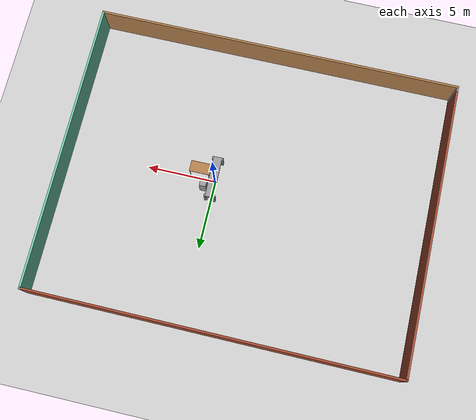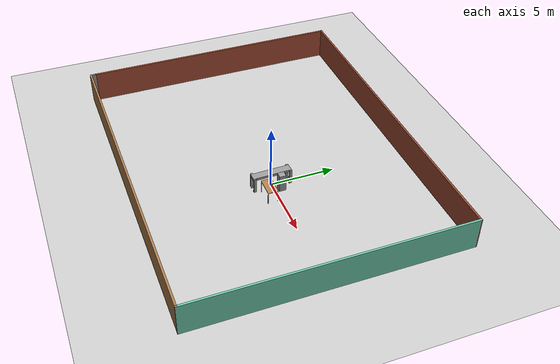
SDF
<sdf version="1.7">
 <world name="default">
  <model name="ground_plane">
   <static>1</static>
   <link name="link">
    <collision name="collision">
     <geometry><plane><normal>0 0 1</normal><size>100 100</size></plane></geometry>
     <surface>
      <contact><collide_bitmask>65535</collide_bitmask></contact>
      <friction><ode><mu>100</mu><mu2>50</mu2></ode></friction>
     </surface>
    </collision>
    <visual name="visual">
     <cast_shadows>0</cast_shadows>
     <geometry><plane><normal>0 0 1</normal><size>100 100</size></plane></geometry>
     <material>
      <script><uri>file://media/materials/scripts/gazebo.material</uri><name>Gazebo/Grey</name></script>
     </material>
    </visual>
   </link>
  </model>
  <model name="trolley">
   <link name="link_0">
    <inertial>
     <mass>1</mass>
     <inertia>
      <ixx>0.166667</ixx>
      <ixy>0</ixy>
      <ixz>0</ixz>
      <iyy>0.166667</iyy>
      <iyz>0</iyz>
      <izz>0.166667</izz>
     </inertia>
    </inertial>
    <pose>-0.120868 0.130124 0.533333 0 -0 0</pose>
    <visual name="visual">
     <geometry><box><size>0.6 3 0.2</size></box></geometry>
     <material>
      <lighting>1</lighting>
      <script><uri>file://media/materials/scripts/gazebo.material</uri><name>Gazebo/Grey</name></script>
      <shader type="pixel"><normal_map>__default__</normal_map></shader>
      <ambient>0.3 0.3 0.3 1</ambient>
      <diffuse>0.7 0.7 0.7 1</diffuse>
      <specular>0.01 0.01 0.01 1</specular>
      <emissive>0 0 0 1</emissive>
     </material>
    </visual>
    <collision name="collision">
     <geometry><box><size>0.6 3 0.2</size></box></geometry>
     <surface>
      <friction>
       <ode><mu>1</mu><mu2>1</mu2><fdir1>0 0 0</fdir1><slip1>0</slip1><slip2>0</slip2></ode>
       <torsional>
        <coefficient>1</coefficient>
        <patch_radius>0</patch_radius>
        <surface_radius>0</surface_radius>
        <use_patch_radius>1</use_patch_radius>
        <ode><slip>0</slip></ode>
       </torsional>
      </friction>
      <bounce><restitution_coefficient>0</restitution_coefficient><threshold>1e+06</threshold></bounce>
      <contact>
       <collide_without_contact>0</collide_without_contact>
       <collide_without_contact_bitmask>1</collide_without_contact_bitmask>
       <collide_bitmask>1</collide_bitmask>
       <ode>
        <soft_cfm>0</soft_cfm>
        <soft_erp>0.2</soft_erp>
        <kp>1e+13</kp>
        <kd>1</kd>
        <max_vel>0.01</max_vel>
        <min_depth>0</min_depth>
       </ode>
       <bullet>
        <split_impulse>1</split_impulse>
        <split_impulse_penetration_threshold>-0.01</split_impulse_penetration_threshold>
        <soft_cfm>0</soft_cfm>
        <soft_erp>0.2</soft_erp>
        <kp>1e+13</kp>
        <kd>1</kd>
       </bullet>
      </contact>
     </surface>
    </collision>
   </link>
   <link name="link_1">
    <inertial>
     <mass>1</mass>
     <inertia>
      <ixx>0.166667</ixx>
      <ixy>0</ixy>
      <ixz>0</ixz>
      <iyy>0.166667</iyy>
      <iyz>0</iyz>
      <izz>0.166667</izz>
     </inertia>
    </inertial>
    <pose>0.229136 -1.26987 0.033333 0 -0 0</pose>
    <visual name="visual">
     <geometry><box><size>0.1 0.2 1.2</size></box></geometry>
     <material>
      <lighting>1</lighting>
      <script><uri>file://media/materials/scripts/gazebo.material</uri><name>Gazebo/Grey</name></script>
      <shader type="pixel"><normal_map>__default__</normal_map></shader>
      <ambient>0.3 0.3 0.3 1</ambient>
      <diffuse>0.7 0.7 0.7 1</diffuse>
      <specular>0.01 0.01 0.01 1</specular>
      <emissive>0 0 0 1</emissive>
     </material>
    </visual>
    <collision name="collision">
     <geometry><box><size>0.1 0.2 1.2</size></box></geometry>
     <surface>
      <friction>
       <ode><mu>1</mu><mu2>1</mu2><fdir1>0 0 0</fdir1><slip1>0</slip1><slip2>0</slip2></ode>
       <torsional>
        <coefficient>1</coefficient>
        <patch_radius>0</patch_radius>
        <surface_radius>0</surface_radius>
        <use_patch_radius>1</use_patch_radius>
        <ode><slip>0</slip></ode>
       </torsional>
      </friction>
      <bounce><restitution_coefficient>0</restitution_coefficient><threshold>1e+06</threshold></bounce>
      <contact>
       <collide_without_contact>0</collide_without_contact>
       <collide_without_contact_bitmask>1</collide_without_contact_bitmask>
       <collide_bitmask>1</collide_bitmask>
       <ode>
        <soft_cfm>0</soft_cfm>
        <soft_erp>0.2</soft_erp>
        <kp>1e+13</kp>
        <kd>1</kd>
        <max_vel>0.01</max_vel>
        <min_depth>0</min_depth>
       </ode>
       <bullet>
        <split_impulse>1</split_impulse>
        <split_impulse_penetration_threshold>-0.01</split_impulse_penetration_threshold>
        <soft_cfm>0</soft_cfm>
        <soft_erp>0.2</soft_erp>
        <kp>1e+13</kp>
        <kd>1</kd>
       </bullet>
      </contact>
     </surface>
    </collision>
   </link>
   <link name="link_1_clone">
    <inertial>
     <mass>1</mass>
     <inertia>
      <ixx>0.166667</ixx>
      <ixy>0</ixy>
      <ixz>0</ixz>
      <iyy>0.166667</iyy>
      <iyz>0</iyz>
      <izz>0.166667</izz>
     </inertia>
    </inertial>
    <pose>-0.470868 1.53012 0.033333 0 -0 0</pose>
    <visual name="visual">
     <geometry><box><size>0.1 0.2 1.2</size></box></geometry>
     <material>
      <lighting>1</lighting>
      <script><uri>file://media/materials/scripts/gazebo.material</uri><name>Gazebo/Grey</name></script>
      <shader type="pixel"><normal_map>__default__</normal_map></shader>
      <ambient>0.3 0.3 0.3 1</ambient>
      <diffuse>0.7 0.7 0.7 1</diffuse>
      <specular>0.01 0.01 0.01 1</specular>
      <emissive>0 0 0 1</emissive>
     </material>
    </visual>
    <collision name="collision">
     <geometry><box><size>0.1 0.2 1.2</size></box></geometry>
     <surface>
      <friction>
       <ode><mu>1</mu><mu2>1</mu2><fdir1>0 0 0</fdir1><slip1>0</slip1><slip2>0</slip2></ode>
       <torsional>
        <coefficient>1</coefficient>
        <patch_radius>0</patch_radius>
        <surface_radius>0</surface_radius>
        <use_patch_radius>1</use_patch_radius>
        <ode><slip>0</slip></ode>
       </torsional>
      </friction>
      <bounce><restitution_coefficient>0</restitution_coefficient><threshold>1e+06</threshold></bounce>
      <contact>
       <collide_without_contact>0</collide_without_contact>
       <collide_without_contact_bitmask>1</collide_without_contact_bitmask>
       <collide_bitmask>1</collide_bitmask>
       <ode>
        <soft_cfm>0</soft_cfm>
        <soft_erp>0.2</soft_erp>
        <kp>1e+13</kp>
        <kd>1</kd>
        <max_vel>0.01</max_vel>
        <min_depth>0</min_depth>
       </ode>
       <bullet>
        <split_impulse>1</split_impulse>
        <split_impulse_penetration_threshold>-0.01</split_impulse_penetration_threshold>
        <soft_cfm>0</soft_cfm>
        <soft_erp>0.2</soft_erp>
        <kp>1e+13</kp>
        <kd>1</kd>
       </bullet>
      </contact>
     </surface>
    </collision>
   </link>
   <link name="link_1_clone_0">
    <inertial>
     <mass>1</mass>
     <inertia>
      <ixx>0.166667</ixx>
      <ixy>0</ixy>
      <ixz>0</ixz>
      <iyy>0.166667</iyy>
      <iyz>0</iyz>
      <izz>0.166667</izz>
     </inertia>
    </inertial>
    <pose>-0.470868 -1.26987 0.033333 0 -0 0</pose>
    <visual name="visual">
     <geometry><box><size>0.1 0.2 1.2</size></box></geometry>
     <material>
      <lighting>1</lighting>
      <script><uri>file://media/materials/scripts/gazebo.material</uri><name>Gazebo/Grey</name></script>
      <shader type="pixel"><normal_map>__default__</normal_map></shader>
      <ambient>0.3 0.3 0.3 1</ambient>
      <diffuse>0.7 0.7 0.7 1</diffuse>
      <specular>0.01 0.01 0.01 1</specular>
      <emissive>0 0 0 1</emissive>
     </material>
    </visual>
    <collision name="collision">
     <geometry><box><size>0.1 0.2 1.2</size></box></geometry>
     <surface>
      <friction>
       <ode><mu>1</mu><mu2>1</mu2><fdir1>0 0 0</fdir1><slip1>0</slip1><slip2>0</slip2></ode>
       <torsional>
        <coefficient>1</coefficient>
        <patch_radius>0</patch_radius>
        <surface_radius>0</surface_radius>
        <use_patch_radius>1</use_patch_radius>
        <ode><slip>0</slip></ode>
       </torsional>
      </friction>
      <bounce><restitution_coefficient>0</restitution_coefficient><threshold>1e+06</threshold></bounce>
      <contact>
       <collide_without_contact>0</collide_without_contact>
       <collide_without_contact_bitmask>1</collide_without_contact_bitmask>
       <collide_bitmask>1</collide_bitmask>
       <ode>
        <soft_cfm>0</soft_cfm>
        <soft_erp>0.2</soft_erp>
        <kp>1e+13</kp>
        <kd>1</kd>
        <max_vel>0.01</max_vel>
        <min_depth>0</min_depth>
       </ode>
       <bullet>
        <split_impulse>1</split_impulse>
        <split_impulse_penetration_threshold>-0.01</split_impulse_penetration_threshold>
        <soft_cfm>0</soft_cfm>
        <soft_erp>0.2</soft_erp>
        <kp>1e+13</kp>
        <kd>1</kd>
       </bullet>
      </contact>
     </surface>
    </collision>
   </link>
   <link name="link_1_clone_1">
    <inertial>
     <mass>1</mass>
     <inertia>
      <ixx>0.166667</ixx>
      <ixy>0</ixy>
      <ixz>0</ixz>
      <iyy>0.166667</iyy>
      <iyz>0</iyz>
      <izz>0.166667</izz>
     </inertia>
    </inertial>
    <pose>0.229136 1.53012 0.033333 0 -0 0</pose>
    <visual name="visual">
     <geometry><box><size>0.1 0.2 1.2</size></box></geometry>
     <material>
      <lighting>1</lighting>
      <script><uri>file://media/materials/scripts/gazebo.material</uri><name>Gazebo/Grey</name></script>
      <shader type="pixel"><normal_map>__default__</normal_map></shader>
      <ambient>0.3 0.3 0.3 1</ambient>
      <diffuse>0.7 0.7 0.7 1</diffuse>
      <specular>0.01 0.01 0.01 1</specular>
      <emissive>0 0 0 1</emissive>
     </material>
    </visual>
    <collision name="collision">
     <geometry><box><size>0.1 0.2 1.2</size></box></geometry>
     <surface>
      <friction>
       <ode><mu>1</mu><mu2>1</mu2><fdir1>0 0 0</fdir1><slip1>0</slip1><slip2>0</slip2></ode>
       <torsional>
        <coefficient>1</coefficient>
        <patch_radius>0</patch_radius>
        <surface_radius>0</surface_radius>
        <use_patch_radius>1</use_patch_radius>
        <ode><slip>0</slip></ode>
       </torsional>
      </friction>
      <bounce><restitution_coefficient>0</restitution_coefficient><threshold>1e+06</threshold></bounce>
      <contact>
       <collide_without_contact>0</collide_without_contact>
       <collide_without_contact_bitmask>1</collide_without_contact_bitmask>
       <collide_bitmask>1</collide_bitmask>
       <ode>
        <soft_cfm>0</soft_cfm>
        <soft_erp>0.2</soft_erp>
        <kp>1e+13</kp>
        <kd>1</kd>
        <max_vel>0.01</max_vel>
        <min_depth>0</min_depth>
       </ode>
       <bullet>
        <split_impulse>1</split_impulse>
        <split_impulse_penetration_threshold>-0.01</split_impulse_penetration_threshold>
        <soft_cfm>0</soft_cfm>
        <soft_erp>0.2</soft_erp>
        <kp>1e+13</kp>
        <kd>1</kd>
       </bullet>
      </contact>
     </surface>
    </collision>
   </link>
   <link name="link_2">
    <inertial>
     <mass>1</mass>
     <inertia><ixx>0.145833</ixx><ixy>0</ixy><ixz>0</ixz><iyy>0.145833</iyy><iyz>0</iyz><izz>0.125</izz></inertia>
    </inertial>
    <pose>-0.370868 -1.26987 -0.566667 0 1.57 0</pose>
    <visual name="visual">
     <geometry><cylinder><radius>0.1</radius><length>0.1</length></cylinder></geometry>
     <material>
      <lighting>1</lighting>
      <script><uri>file://media/materials/scripts/gazebo.material</uri><name>Gazebo/Grey</name></script>
      <shader type="pixel"><normal_map>__default__</normal_map></shader>
      <ambient>0.3 0.3 0.3 1</ambient>
      <diffuse>0.7 0.7 0.7 1</diffuse>
      <specular>0.01 0.01 0.01 1</specular>
      <emissive>0 0 0 1</emissive>
     </material>
    </visual>
    <collision name="collision">
     <geometry><cylinder><radius>0.1</radius><length>0.1</length></cylinder></geometry>
     <surface>
      <friction>
       <ode><mu>1</mu><mu2>1</mu2><fdir1>0 0 0</fdir1><slip1>0</slip1><slip2>0</slip2></ode>
       <torsional>
        <coefficient>1</coefficient>
        <patch_radius>0</patch_radius>
        <surface_radius>0</surface_radius>
        <use_patch_radius>1</use_patch_radius>
        <ode><slip>0</slip></ode>
       </torsional>
      </friction>
      <bounce><restitution_coefficient>0</restitution_coefficient><threshold>1e+06</threshold></bounce>
      <contact>
       <collide_without_contact>0</collide_without_contact>
       <collide_without_contact_bitmask>1</collide_without_contact_bitmask>
       <collide_bitmask>1</collide_bitmask>
       <ode>
        <soft_cfm>0</soft_cfm>
        <soft_erp>0.2</soft_erp>
        <kp>1e+13</kp>
        <kd>1</kd>
        <max_vel>0.01</max_vel>
        <min_depth>0</min_depth>
       </ode>
       <bullet>
        <split_impulse>1</split_impulse>
        <split_impulse_penetration_threshold>-0.01</split_impulse_penetration_threshold>
        <soft_cfm>0</soft_cfm>
        <soft_erp>0.2</soft_erp>
        <kp>1e+13</kp>
        <kd>1</kd>
       </bullet>
      </contact>
     </surface>
    </collision>
   </link>
   <link name="link_2_clone">
    <inertial>
     <mass>1</mass>
     <inertia><ixx>0.145833</ixx><ixy>0</ixy><ixz>0</ixz><iyy>0.145833</iyy><iyz>0</iyz><izz>0.125</izz></inertia>
    </inertial>
    <pose>-0.370868 1.53012 -0.566667 0 1.57 0</pose>
    <visual name="visual">
     <geometry><cylinder><radius>0.1</radius><length>0.1</length></cylinder></geometry>
     <material>
      <lighting>1</lighting>
      <script><uri>file://media/materials/scripts/gazebo.material</uri><name>Gazebo/Grey</name></script>
      <shader type="pixel"><normal_map>__default__</normal_map></shader>
      <ambient>0.3 0.3 0.3 1</ambient>
      <diffuse>0.7 0.7 0.7 1</diffuse>
      <specular>0.01 0.01 0.01 1</specular>
      <emissive>0 0 0 1</emissive>
     </material>
    </visual>
    <collision name="collision">
     <geometry><cylinder><radius>0.1</radius><length>0.1</length></cylinder></geometry>
     <surface>
      <friction>
       <ode><mu>1</mu><mu2>1</mu2><fdir1>0 0 0</fdir1><slip1>0</slip1><slip2>0</slip2></ode>
       <torsional>
        <coefficient>1</coefficient>
        <patch_radius>0</patch_radius>
        <surface_radius>0</surface_radius>
        <use_patch_radius>1</use_patch_radius>
        <ode><slip>0</slip></ode>
       </torsional>
      </friction>
      <bounce><restitution_coefficient>0</restitution_coefficient><threshold>1e+06</threshold></bounce>
      <contact>
       <collide_without_contact>0</collide_without_contact>
       <collide_without_contact_bitmask>1</collide_without_contact_bitmask>
       <collide_bitmask>1</collide_bitmask>
       <ode>
        <soft_cfm>0</soft_cfm>
        <soft_erp>0.2</soft_erp>
        <kp>1e+13</kp>
        <kd>1</kd>
        <max_vel>0.01</max_vel>
        <min_depth>0</min_depth>
       </ode>
       <bullet>
        <split_impulse>1</split_impulse>
        <split_impulse_penetration_threshold>-0.01</split_impulse_penetration_threshold>
        <soft_cfm>0</soft_cfm>
        <soft_erp>0.2</soft_erp>
        <kp>1e+13</kp>
        <kd>1</kd>
       </bullet>
      </contact>
     </surface>
    </collision>
   </link>
   <link name="link_2_clone_0">
    <inertial>
     <mass>1</mass>
     <inertia><ixx>0.145833</ixx><ixy>0</ixy><ixz>0</ixz><iyy>0.145833</iyy><iyz>0</iyz><izz>0.125</izz></inertia>
    </inertial>
    <pose>0.129132 1.53012 -0.566667 0 1.57 0</pose>
    <visual name="visual">
     <geometry><cylinder><radius>0.1</radius><length>0.1</length></cylinder></geometry>
     <material>
      <lighting>1</lighting>
      <script><uri>file://media/materials/scripts/gazebo.material</uri><name>Gazebo/Grey</name></script>
      <shader type="pixel"><normal_map>__default__</normal_map></shader>
      <ambient>0.3 0.3 0.3 1</ambient>
      <diffuse>0.7 0.7 0.7 1</diffuse>
      <specular>0.01 0.01 0.01 1</specular>
      <emissive>0 0 0 1</emissive>
     </material>
    </visual>
    <collision name="collision">
     <geometry><cylinder><radius>0.1</radius><length>0.1</length></cylinder></geometry>
     <surface>
      <friction>
       <ode><mu>1</mu><mu2>1</mu2><fdir1>0 0 0</fdir1><slip1>0</slip1><slip2>0</slip2></ode>
       <torsional>
        <coefficient>1</coefficient>
        <patch_radius>0</patch_radius>
        <surface_radius>0</surface_radius>
        <use_patch_radius>1</use_patch_radius>
        <ode><slip>0</slip></ode>
       </torsional>
      </friction>
      <bounce><restitution_coefficient>0</restitution_coefficient><threshold>1e+06</threshold></bounce>
      <contact>
       <collide_without_contact>0</collide_without_contact>
       <collide_without_contact_bitmask>1</collide_without_contact_bitmask>
       <collide_bitmask>1</collide_bitmask>
       <ode>
        <soft_cfm>0</soft_cfm>
        <soft_erp>0.2</soft_erp>
        <kp>1e+13</kp>
        <kd>1</kd>
        <max_vel>0.01</max_vel>
        <min_depth>0</min_depth>
       </ode>
       <bullet>
        <split_impulse>1</split_impulse>
        <split_impulse_penetration_threshold>-0.01</split_impulse_penetration_threshold>
        <soft_cfm>0</soft_cfm>
        <soft_erp>0.2</soft_erp>
        <kp>1e+13</kp>
        <kd>1</kd>
       </bullet>
      </contact>
     </surface>
    </collision>
   </link>
   <link name="link_2_clone_1">
    <inertial>
     <mass>1</mass>
     <inertia><ixx>0.145833</ixx><ixy>0</ixy><ixz>0</ixz><iyy>0.145833</iyy><iyz>0</iyz><izz>0.125</izz></inertia>
    </inertial>
    <pose>0.129136 -1.26987 -0.566667 0 1.57 0</pose>
    <visual name="visual">
     <geometry><cylinder><radius>0.1</radius><length>0.1</length></cylinder></geometry>
     <material>
      <lighting>1</lighting>
      <script><uri>file://media/materials/scripts/gazebo.material</uri><name>Gazebo/Grey</name></script>
      <shader type="pixel"><normal_map>__default__</normal_map></shader>
      <ambient>0.3 0.3 0.3 1</ambient>
      <diffuse>0.7 0.7 0.7 1</diffuse>
      <specular>0.01 0.01 0.01 1</specular>
      <emissive>0 0 0 1</emissive>
     </material>
    </visual>
    <collision name="collision">
     <geometry><cylinder><radius>0.1</radius><length>0.1</length></cylinder></geometry>
     <surface>
      <friction>
       <ode><mu>1</mu><mu2>1</mu2><fdir1>0 0 0</fdir1><slip1>0</slip1><slip2>0</slip2></ode>
       <torsional>
        <coefficient>1</coefficient>
        <patch_radius>0</patch_radius>
        <surface_radius>0</surface_radius>
        <use_patch_radius>1</use_patch_radius>
        <ode><slip>0</slip></ode>
       </torsional>
      </friction>
      <bounce><restitution_coefficient>0</restitution_coefficient><threshold>1e+06</threshold></bounce>
      <contact>
       <collide_without_contact>0</collide_without_contact>
       <collide_without_contact_bitmask>1</collide_without_contact_bitmask>
       <collide_bitmask>1</collide_bitmask>
       <ode>
        <soft_cfm>0</soft_cfm>
        <soft_erp>0.2</soft_erp>
        <kp>1e+13</kp>
        <kd>1</kd>
        <max_vel>0.01</max_vel>
        <min_depth>0</min_depth>
       </ode>
       <bullet>
        <split_impulse>1</split_impulse>
        <split_impulse_penetration_threshold>-0.01</split_impulse_penetration_threshold>
        <soft_cfm>0</soft_cfm>
        <soft_erp>0.2</soft_erp>
        <kp>1e+13</kp>
        <kd>1</kd>
       </bullet>
      </contact>
     </surface>
    </collision>
   </link>
   <joint name="link_0_JOINT_0" type="revolute">
    <parent>link_0</parent>
    <child>link_1_clone</child>
    <axis>
     <xyz>1 0 0</xyz>
     <limit>
      <lower>-1.79769e+308</lower>
      <upper>1.79769e+308</upper>
      <effort>-1</effort>
      <velocity>-1</velocity>
     </limit>
     <dynamics>
      <spring_reference>0</spring_reference>
      <spring_stiffness>0</spring_stiffness>
      <damping>0</damping>
     </dynamics>
    </axis>
    <physics>
     <ode><limit><cfm>0</cfm><erp>0.2</erp></limit><suspension><cfm>0</cfm><erp>0.2</erp></suspension></ode>
    </physics>
   </joint>
   <joint name="link_0_JOINT_1" type="revolute">
    <parent>link_0</parent>
    <child>link_1_clone_1</child>
    <axis>
     <xyz>1 0 0</xyz>
     <limit>
      <lower>-1.79769e+308</lower>
      <upper>1.79769e+308</upper>
      <effort>-1</effort>
      <velocity>-1</velocity>
     </limit>
     <dynamics>
      <spring_reference>0</spring_reference>
      <spring_stiffness>0</spring_stiffness>
      <damping>0</damping>
     </dynamics>
    </axis>
    <physics>
     <ode><limit><cfm>0</cfm><erp>0.2</erp></limit><suspension><cfm>0</cfm><erp>0.2</erp></suspension></ode>
    </physics>
   </joint>
   <joint name="link_0_JOINT_2" type="revolute">
    <parent>link_0</parent>
    <child>link_1_clone_1</child>
    <axis>
     <xyz>1 0 0</xyz>
     <limit>
      <lower>-1.79769e+308</lower>
      <upper>1.79769e+308</upper>
      <effort>-1</effort>
      <velocity>-1</velocity>
     </limit>
     <dynamics>
      <spring_reference>0</spring_reference>
      <spring_stiffness>0</spring_stiffness>
      <damping>0</damping>
     </dynamics>
    </axis>
    <physics>
     <ode><limit><cfm>0</cfm><erp>0.2</erp></limit><suspension><cfm>0</cfm><erp>0.2</erp></suspension></ode>
    </physics>
   </joint>
   <joint name="link_0_JOINT_3" type="fixed">
    <parent>link_0</parent>
    <child>link_1_clone_1</child>
    <pose>0 0 0 -0.03 0 0</pose>
    <physics>
     <ode><limit><cfm>0</cfm><erp>0.2</erp></limit><suspension><cfm>0</cfm><erp>0.2</erp></suspension></ode>
    </physics>
   </joint>
   <joint name="link_0_JOINT_4" type="fixed">
    <parent>link_0</parent>
    <child>link_1_clone</child>
    <pose>0 0 0 0 -0.04 0</pose>
    <physics>
     <ode><limit><cfm>0</cfm><erp>0.2</erp></limit><suspension><cfm>0</cfm><erp>0.2</erp></suspension></ode>
    </physics>
   </joint>
   <joint name="link_0_JOINT_5" type="fixed">
    <parent>link_0</parent>
    <child>link_1</child>
    <physics>
     <ode><limit><cfm>0</cfm><erp>0.2</erp></limit><suspension><cfm>0</cfm><erp>0.2</erp></suspension></ode>
    </physics>
   </joint>
   <joint name="link_0_JOINT_6" type="fixed">
    <parent>link_0</parent>
    <child>link_1_clone_0</child>
    <physics>
     <ode><limit><cfm>0</cfm><erp>0.2</erp></limit><suspension><cfm>0</cfm><erp>0.2</erp></suspension></ode>
    </physics>
   </joint>
   <joint name="link_1_JOINT_12" type="revolute">
    <parent>link_1</parent>
    <child>link_2_clone_1</child>
    <axis>
     <xyz>1 0 0</xyz>
     <limit>
      <lower>-1.79769e+308</lower>
      <upper>1.79769e+308</upper>
      <effort>-1</effort>
      <velocity>-1</velocity>
     </limit>
     <dynamics>
      <spring_reference>0</spring_reference>
      <spring_stiffness>0</spring_stiffness>
      <damping>0</damping>
     </dynamics>
    </axis>
    <physics>
     <ode><limit><cfm>0</cfm><erp>0.2</erp></limit><suspension><cfm>0</cfm><erp>0.2</erp></suspension></ode>
    </physics>
   </joint>
   <joint name="link_1_clone_0_JOINT_13" type="revolute">
    <parent>link_1_clone_0</parent>
    <child>link_2</child>
    <axis>
     <xyz>1 0 0</xyz>
     <limit>
      <lower>-1.79769e+308</lower>
      <upper>1.79769e+308</upper>
      <effort>-1</effort>
      <velocity>-1</velocity>
     </limit>
     <dynamics>
      <spring_reference>0</spring_reference>
      <spring_stiffness>0</spring_stiffness>
      <damping>0</damping>
     </dynamics>
    </axis>
    <physics>
     <ode><limit><cfm>0</cfm><erp>0.2</erp></limit><suspension><cfm>0</cfm><erp>0.2</erp></suspension></ode>
    </physics>
   </joint>
   <joint name="link_1_clone_1_JOINT_10" type="revolute">
    <parent>link_1_clone_1</parent>
    <child>link_2_clone_0</child>
    <axis>
     <xyz>1 0 0</xyz>
     <limit>
      <lower>-1.79769e+308</lower>
      <upper>1.79769e+308</upper>
      <effort>-1</effort>
      <velocity>-1</velocity>
     </limit>
     <dynamics>
      <spring_reference>0</spring_reference>
      <spring_stiffness>0</spring_stiffness>
      <damping>0</damping>
     </dynamics>
    </axis>
    <physics>
     <ode><limit><cfm>0</cfm><erp>0.2</erp></limit><suspension><cfm>0</cfm><erp>0.2</erp></suspension></ode>
    </physics>
   </joint>
   <joint name="link_1_clone_1_JOINT_11" type="revolute">
    <parent>link_1_clone_1</parent>
    <child>link_2_clone_0</child>
    <axis>
     <xyz>1 0 0</xyz>
     <limit>
      <lower>-1.79769e+308</lower>
      <upper>1.79769e+308</upper>
      <effort>-1</effort>
      <velocity>-1</velocity>
     </limit>
     <dynamics>
      <spring_reference>0</spring_reference>
      <spring_stiffness>0</spring_stiffness>
      <damping>0</damping>
     </dynamics>
    </axis>
    <physics>
     <ode><limit><cfm>0</cfm><erp>0.2</erp></limit><suspension><cfm>0</cfm><erp>0.2</erp></suspension></ode>
    </physics>
   </joint>
   <joint name="link_1_clone_1_JOINT_7" type="revolute">
    <parent>link_1_clone_1</parent>
    <child>link_2_clone_0</child>
    <axis>
     <xyz>1 0 0</xyz>
     <limit>
      <lower>-1.79769e+308</lower>
      <upper>1.79769e+308</upper>
      <effort>-1</effort>
      <velocity>-1</velocity>
     </limit>
     <dynamics>
      <spring_reference>0</spring_reference>
      <spring_stiffness>0</spring_stiffness>
      <damping>0</damping>
     </dynamics>
    </axis>
    <physics>
     <ode><limit><cfm>0</cfm><erp>0.2</erp></limit><suspension><cfm>0</cfm><erp>0.2</erp></suspension></ode>
    </physics>
   </joint>
   <joint name="link_1_clone_1_JOINT_9" type="revolute">
    <parent>link_1_clone_1</parent>
    <child>link_2_clone_0</child>
    <axis>
     <xyz>1 0 0</xyz>
     <limit>
      <lower>-1.79769e+308</lower>
      <upper>1.79769e+308</upper>
      <effort>-1</effort>
      <velocity>-1</velocity>
     </limit>
     <dynamics>
      <spring_reference>0</spring_reference>
      <spring_stiffness>0</spring_stiffness>
      <damping>0</damping>
     </dynamics>
    </axis>
    <physics>
     <ode><limit><cfm>0</cfm><erp>0.2</erp></limit><suspension><cfm>0</cfm><erp>0.2</erp></suspension></ode>
    </physics>
   </joint>
   <joint name="link_1_clone_JOINT_14" type="revolute">
    <parent>link_1_clone</parent>
    <child>link_2_clone</child>
    <axis>
     <xyz>1 0 0</xyz>
     <limit>
      <lower>-1.79769e+308</lower>
      <upper>1.79769e+308</upper>
      <effort>-1</effort>
      <velocity>-1</velocity>
     </limit>
     <dynamics>
      <spring_reference>0</spring_reference>
      <spring_stiffness>0</spring_stiffness>
      <damping>0</damping>
     </dynamics>
    </axis>
    <physics>
     <ode><limit><cfm>0</cfm><erp>0.2</erp></limit><suspension><cfm>0</cfm><erp>0.2</erp></suspension></ode>
    </physics>
   </joint>
   <static>0</static>
   <pose>0.199573 -0.155089 0.666678 4e-06 -9e-06 0.022783</pose>
  </model>
  <model name="unit_box">
   <pose>0.698759 0.56717 0.690336 1e-06 1e-06 -0.000694</pose>
   <link name="link">
    <inertial>
     <mass>1</mass>
     <inertia>
      <ixx>0.166667</ixx>
      <ixy>0</ixy>
      <ixz>0</ixz>
      <iyy>0.166667</iyy>
      <iyz>0</iyz>
      <izz>0.166667</izz>
     </inertia>
    </inertial>
    <collision name="collision"><geometry><box><size>0.481392 0.503483 1.38067</size></box></geometry></collision>
    <visual name="visual">
     <geometry><box><size>0.481392 0.503483 1.38067</size></box></geometry>
     <material>
      <script><name>Gazebo/Grey</name><uri>file://media/materials/scripts/gazebo.material</uri></script>
     </material>
    </visual>
   </link>
  </model>
  <model name="table">
   <static>1</static>
   <link name="link">
    <collision name="surface">
     <pose>0 0 1 0 -0 0</pose>
     <geometry><box><size>1.5 0.8 0.03</size></box></geometry>
     <surface><friction><ode><mu>0.6</mu><mu2>0.6</mu2></ode></friction></surface>
    </collision>
    <visual name="visual1">
     <pose>0 0 1 0 -0 0</pose>
     <geometry><box><size>1.5 0.8 0.03</size></box></geometry>
     <material>
      <script><uri>file://media/materials/scripts/gazebo.material</uri><name>Gazebo/Wood</name></script>
     </material>
    </visual>
    <collision name="front_left_leg">
     <pose>0.68 0.38 0.5 0 -0 0</pose>
     <geometry><cylinder><radius>0.02</radius><length>1</length></cylinder></geometry>
    </collision>
    <visual name="front_left_leg">
     <pose>0.68 0.38 0.5 0 -0 0</pose>
     <geometry><cylinder><radius>0.02</radius><length>1</length></cylinder></geometry>
     <material>
      <script><uri>file://media/materials/scripts/gazebo.material</uri><name>Gazebo/Grey</name></script>
     </material>
    </visual>
    <collision name="front_right_leg">
     <pose>0.68 -0.38 0.5 0 -0 0</pose>
     <geometry><cylinder><radius>0.02</radius><length>1</length></cylinder></geometry>
    </collision>
    <visual name="front_right_leg">
     <pose>0.68 -0.38 0.5 0 -0 0</pose>
     <geometry><cylinder><radius>0.02</radius><length>1</length></cylinder></geometry>
     <material>
      <script><uri>file://media/materials/scripts/gazebo.material</uri><name>Gazebo/Grey</name></script>
     </material>
    </visual>
    <collision name="back_right_leg">
     <pose>-0.68 -0.38 0.5 0 -0 0</pose>
     <geometry><cylinder><radius>0.02</radius><length>1</length></cylinder></geometry>
    </collision>
    <visual name="back_right_leg">
     <pose>-0.68 -0.38 0.5 0 -0 0</pose>
     <geometry><cylinder><radius>0.02</radius><length>1</length></cylinder></geometry>
     <material>
      <script><uri>file://media/materials/scripts/gazebo.material</uri><name>Gazebo/Grey</name></script>
     </material>
    </visual>
    <collision name="back_left_leg">
     <pose>-0.68 0.38 0.5 0 -0 0</pose>
     <geometry><cylinder><radius>0.02</radius><length>1</length></cylinder></geometry>
    </collision>
    <visual name="back_left_leg">
     <pose>-0.68 0.38 0.5 0 -0 0</pose>
     <geometry><cylinder><radius>0.02</radius><length>1</length></cylinder></geometry>
     <material>
      <script><uri>file://media/materials/scripts/gazebo.material</uri><name>Gazebo/Grey</name></script>
     </material>
    </visual>
   </link>
   <pose>1.1843 -0.555695 0 0 -0 0</pose>
  </model>
  <model name="lab_walls">
   <pose>-2.3642 0.330545 0 0 -0 0</pose>
   <link name="Wall_10">
    <collision name="Wall_10_Collision">
     <geometry><box><size>20.75 0.15 2.5</size></box></geometry>
     <pose>0 0 1.25 0 -0 0</pose>
    </collision>
    <visual name="Wall_10_Visual">
     <pose>0 0 1.25 0 -0 0</pose>
     <geometry><box><size>20.75 0.15 2.5</size></box></geometry>
     <material>
      <script><uri>file://media/materials/scripts/gazebo.material</uri><name>Gazebo/Bricks</name></script>
      <ambient>1 1 1 1</ambient>
     </material>
     <meta><layer>0</layer></meta>
    </visual>
    <pose>-13.175 0.174858 0 0 -0 -1.5708</pose>
   </link>
   <link name="Wall_11">
    <collision name="Wall_11_Collision">
     <geometry><box><size>0.5 0.15 2.5</size></box></geometry>
     <pose>0 0 1.25 0 -0 0</pose>
    </collision>
    <visual name="Wall_11_Visual">
     <pose>0 0 1.25 0 -0 0</pose>
     <geometry><box><size>0.5 0.15 2.5</size></box></geometry>
     <material>
      <script><uri>file://media/materials/scripts/gazebo.material</uri><name>Gazebo/Grey</name></script>
      <ambient>1 1 1 1</ambient>
     </material>
     <meta><layer>0</layer></meta>
    </visual>
    <pose>-13.175 -10.3001 0 0 -0 -1.5708</pose>
   </link>
   <link name="Wall_12">
    <collision name="Wall_12_Collision">
     <geometry><box><size>26.5 0.15 2.5</size></box></geometry>
     <pose>0 0 1.25 0 -0 0</pose>
    </collision>
    <visual name="Wall_12_Visual">
     <pose>0 0 1.25 0 -0 0</pose>
     <geometry><box><size>26.5 0.15 2.5</size></box></geometry>
     <material>
      <script><uri>file://media/materials/scripts/gazebo.material</uri><name>Gazebo/Wood</name></script>
      <ambient>1 1 1 1</ambient>
     </material>
     <meta><layer>0</layer></meta>
    </visual>
    <pose>0 -10.4751 0 0 -0 0</pose>
   </link>
   <link name="Wall_13">
    <collision name="Wall_13_Collision">
     <geometry><box><size>21 0.15 2.5</size></box></geometry>
     <pose>0 0 1.25 0 -0 0</pose>
    </collision>
    <visual name="Wall_13_Visual">
     <pose>0 0 1.25 0 -0 0</pose>
     <geometry><box><size>21 0.15 2.5</size></box></geometry>
     <material>
      <script><uri>file://media/materials/scripts/gazebo.material</uri><name>Gazebo/Grey</name></script>
      <ambient>0.435294 0.796078 0.67451 1</ambient>
     </material>
     <meta><layer>0</layer></meta>
    </visual>
    <pose>13.175 -0.050142 0 0 -0 1.5708</pose>
   </link>
   <link name="Wall_14">
    <collision name="Wall_14_Collision">
     <geometry><box><size>26.5 0.15 2.5</size></box></geometry>
     <pose>0 0 1.25 0 -0 0</pose>
    </collision>
    <visual name="Wall_14_Visual">
     <pose>0 0 1.25 0 -0 0</pose>
     <geometry><box><size>26.5 0.15 2.5</size></box></geometry>
     <material>
      <script><uri>file://media/materials/scripts/gazebo.material</uri><name>Gazebo/Bricks</name></script>
      <ambient>1 1 1 1</ambient>
     </material>
     <meta><layer>0</layer></meta>
    </visual>
    <pose>0 10.4249 0 0 -0 3.1378</pose>
   </link>
   <static>1</static>
  </model>
 </world>
</sdf>
